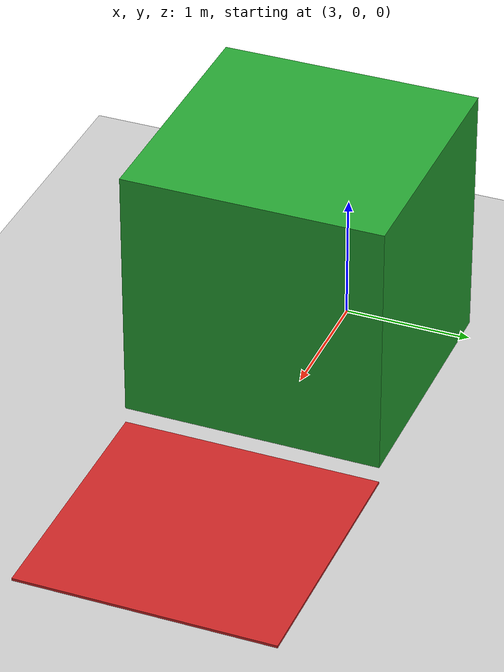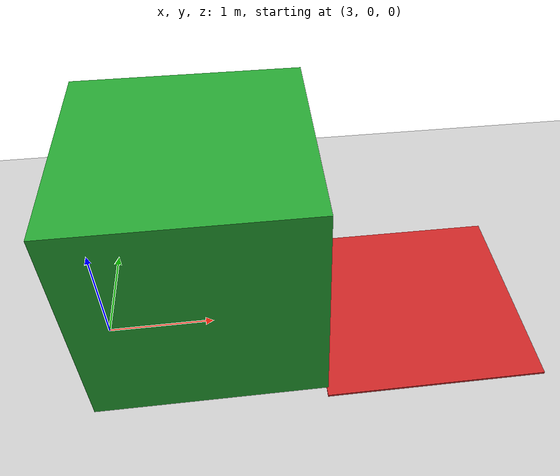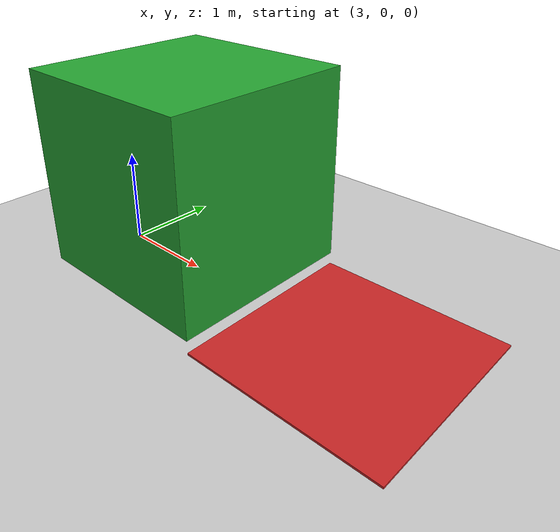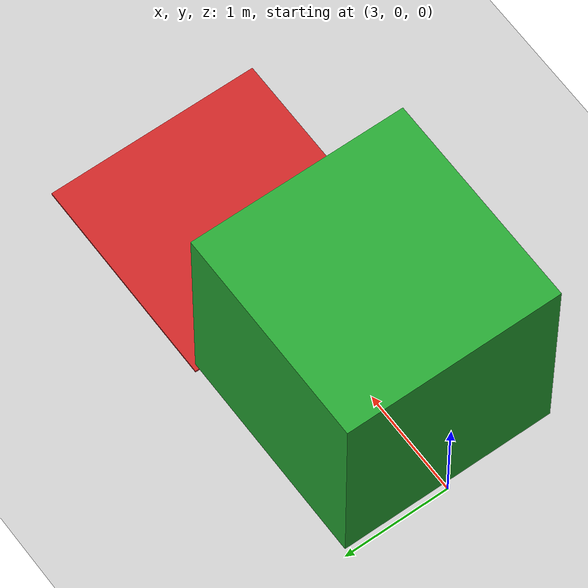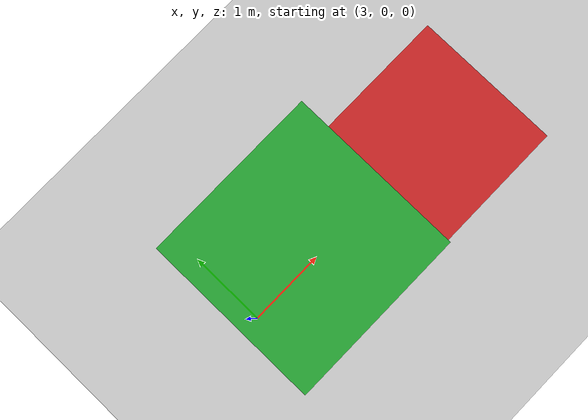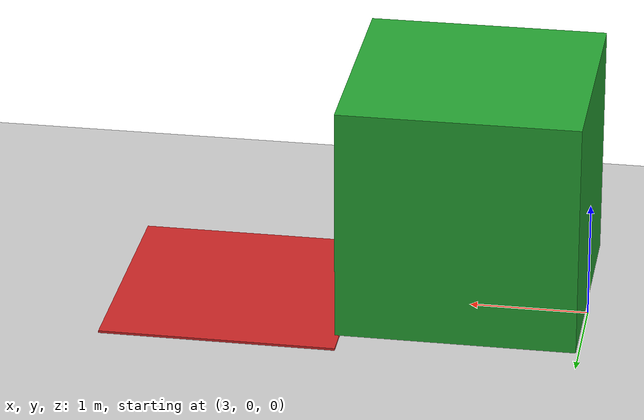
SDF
<sdf version="1.7">
 <world name="default">
  <light name="sun" type="directional">
   <pose>0 0 10 0 -0 0</pose>
   <diffuse>0.8 0.8 0.8 1</diffuse>
   <specular>0.2 0.2 0.2 1</specular>
   <attenuation>
    <range>1000</range>
    <constant>0.9</constant>
    <linear>0.01</linear>
    <quadratic>0.001</quadratic>
   </attenuation>
   <direction>-0.5 0.1 -0.9</direction>
   <spot><inner_angle>0</inner_angle><outer_angle>0</outer_angle><falloff>0</falloff></spot>
  </light>
  <model name="ground_plane">
   <static>1</static>
   <link name="ground_link">
    <collision name="collision">
     <geometry><plane><normal>0 0 1</normal><size>100 100</size></plane></geometry>
     <surface>
      <contact><collide_bitmask>65535</collide_bitmask></contact>
      <friction><ode><mu>100</mu><mu2>50</mu2></ode></friction>
     </surface>
    </collision>
    <visual name="visual">
     <cast_shadows>0</cast_shadows>
     <geometry><plane><normal>0 0 1</normal><size>100 100</size></plane></geometry>
     <material>
      <script><uri>file://media/materials/scripts/gazebo.material</uri><name>Gazebo/Grey</name></script>
     </material>
    </visual>
   </link>
  </model>
  <gravity>0 0 -9.8</gravity>
  <magnetic_field>6e-06 2.3e-05 -4.2e-05</magnetic_field>
  <atmosphere type="adiabatic"/>
  <physics type="ode">
   <max_step_size>0.004</max_step_size>
   <real_time_factor>1</real_time_factor>
   <real_time_update_rate>250</real_time_update_rate>
  </physics>
  <solver><type>quick</type><iters>2</iters><sor>1.4</sor></solver>
  <scene><ambient>0.4 0.4 0.4 1</ambient><background>0.7 0.7 0.7 1</background><shadows>1</shadows></scene>
  <spherical_coordinates>
   <surface_model>EARTH_WGS84</surface_model>
   <latitude_deg>0</latitude_deg>
   <longitude_deg>0</longitude_deg>
   <elevation>0</elevation>
   <heading_deg>0</heading_deg>
  </spherical_coordinates>
  <model name="target_goal">
   <link name="goal_link">
    <inertial>
     <mass>70523.4</mass>
     <inertia><ixx>123853</ixx><ixy>0</ixy><ixz>0</ixz><iyy>36020.8</iyy><iyz>0</iyz><izz>99586.5</izz></inertia>
    </inertial>
    <visual name="visual">
     <geometry><box><size>2 2 0.02</size></box></geometry>
     <material>
      <script><name>Gazebo/Red</name><uri>file://media/materials/scripts/gazebo.material</uri></script>
      <shader type="pixel"><normal_map>__default__</normal_map></shader>
      <ambient>0.87 0.26 0.07</ambient>
      <diffuse>0.87 0.26 0.07</diffuse>
      <specular>0.87 0.26 0.07 1 1</specular>
      <emissive>0 0 0 1</emissive>
     </material>
    </visual>
   </link>
   <static>1</static>
   <pose>6 0 0.01 0 -0 0</pose>
  </model>
  <model name="target">
   <pose>4 0 1.14544 0 -0 0</pose>
   <link name="target_link">
    <inertial>
     <mass>0.3</mass>
     <inertia>
      <ixx>0.1992</ixx>
      <ixy>0.0</ixy>
      <ixz>0.0</ixz>
      <iyy>0.1992</iyy>
      <iyz>0.0</iyz>
      <izz>0.1992</izz>
     </inertia>
    </inertial>
    <collision name="collision"><geometry><box><size>2 2 2</size></box></geometry></collision>
    <visual name="visual">
     <geometry><box><size>2 2 2</size></box></geometry>
     <material>
      <script><name>Gazebo/Green</name><uri>file://media/materials/scripts/gazebo.material</uri></script>
      <shader type="pixel"><normal_map>__default__</normal_map></shader>
      <ambient>0 1 0 1</ambient>
      <diffuse>0 1 0 1</diffuse>
      <specular>0.01 0.01 0.01 1</specular>
      <emissive>0 0 0 1</emissive>
     </material>
    </visual>
   </link>
  </model>
 </world>
</sdf>
